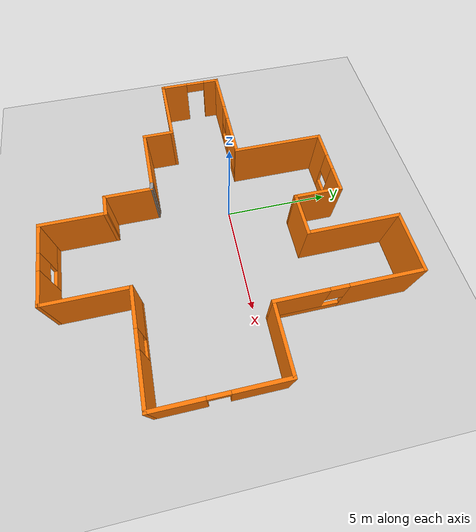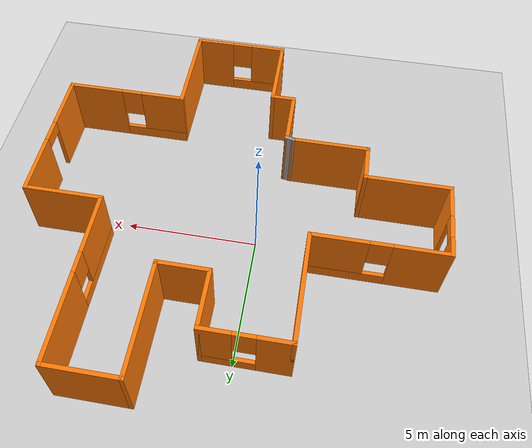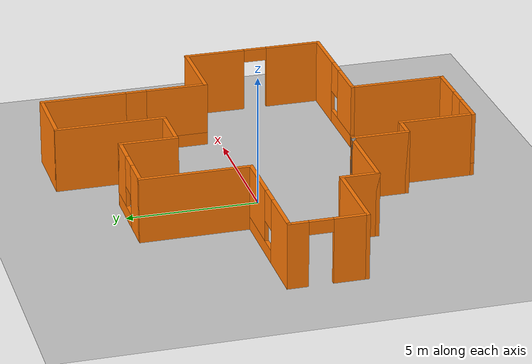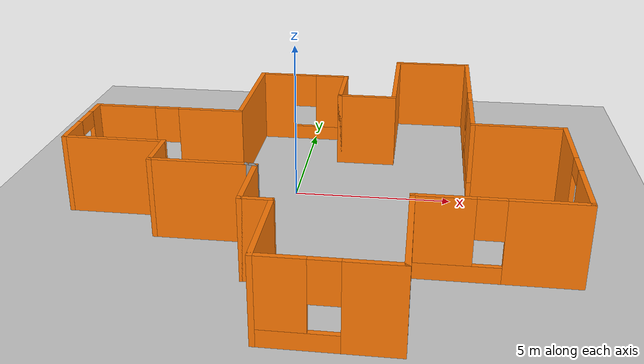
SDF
<sdf version="1.7">
 <world name="default">
  <light name="sun" type="directional">
   <cast_shadows>0</cast_shadows>
   <pose>0 0 10 0 -0 0</pose>
   <diffuse>0.8 0.8 0.8 1</diffuse>
   <specular>0.2 0.2 0.2 1</specular>
   <attenuation>
    <range>1000</range>
    <constant>0.9</constant>
    <linear>0.01</linear>
    <quadratic>0.001</quadratic>
   </attenuation>
   <direction>-0.5 0.1 -0.9</direction>
   <spot><inner_angle>0</inner_angle><outer_angle>0</outer_angle><falloff>0</falloff></spot>
  </light>
  <model name="ground_plane">
   <static>1</static>
   <link name="link">
    <collision name="collision">
     <geometry><plane><normal>0 0 1</normal><size>100 100</size></plane></geometry>
     <surface>
      <contact><collide_bitmask>65535</collide_bitmask></contact>
      <friction><ode><mu>100</mu><mu2>50</mu2></ode></friction>
     </surface>
    </collision>
    <visual name="visual">
     <cast_shadows>0</cast_shadows>
     <geometry><plane><normal>0 0 1</normal><size>100 100</size></plane></geometry>
     <material>
      <script><uri>file://media/materials/scripts/gazebo.material</uri><name>Gazebo/Grey</name></script>
     </material>
    </visual>
   </link>
  </model>
  <gravity>0 0 -9.8</gravity>
  <magnetic_field>6e-06 2.3e-05 -4.2e-05</magnetic_field>
  <atmosphere type="adiabatic"/>
  <physics type="ode">
   <max_step_size>0.001</max_step_size>
   <real_time_factor>1</real_time_factor>
   <real_time_update_rate>1000</real_time_update_rate>
  </physics>
  <scene><ambient>0.4 0.4 0.4 1</ambient><background>0.7 0.7 0.7 1</background><shadows>0</shadows></scene>
  <spherical_coordinates>
   <surface_model>EARTH_WGS84</surface_model>
   <latitude_deg>0</latitude_deg>
   <longitude_deg>0</longitude_deg>
   <elevation>0</elevation>
   <heading_deg>0</heading_deg>
  </spherical_coordinates>
  <model name="CustomEnvironment">
   <pose>0.805 -0.75 0 0 -0 0</pose>
   <link name="Wall_0">
    <collision name="Wall_0_Collision">
     <geometry><box><size>3 0.15 2.5</size></box></geometry>
     <pose>0 0 1.25 0 -0 0</pose>
    </collision>
    <visual name="Wall_0_Visual">
     <pose>0 0 1.25 0 -0 0</pose>
     <geometry><box><size>3 0.15 2.5</size></box></geometry>
     <material>
      <script><uri>file://media/materials/scripts/gazebo.material</uri><name>Gazebo/Grey</name></script>
      <ambient>0.996078 0.47451 0.0196078 1</ambient>
     </material>
     <meta><layer>0</layer></meta>
    </visual>
    <pose>-3.1 -2.65 0 0 -0 3.14159</pose>
   </link>
   <link name="Wall_1">
    <collision name="Wall_1_Collision">
     <geometry><box><size>1.5 0.15 2.5</size></box></geometry>
     <pose>0 0 1.25 0 -0 0</pose>
    </collision>
    <visual name="Wall_1_Visual">
     <pose>0 0 1.25 0 -0 0</pose>
     <geometry><box><size>1.5 0.15 2.5</size></box></geometry>
     <material>
      <script><uri>file://media/materials/scripts/gazebo.material</uri><name>Gazebo/Grey</name></script>
      <ambient>0.996078 0.47451 0.0196078 1</ambient>
     </material>
     <meta><layer>0</layer></meta>
    </visual>
    <pose>-4.525 -1.975 0 0 -0 1.5708</pose>
   </link>
   <link name="Wall_10">
    <collision name="Wall_10_Collision">
     <geometry><box><size>2.75 0.15 2.5</size></box></geometry>
     <pose>0 0 1.25 0 -0 0</pose>
    </collision>
    <visual name="Wall_10_Visual">
     <pose>0 0 1.25 0 -0 0</pose>
     <geometry><box><size>2.75 0.15 2.5</size></box></geometry>
     <material>
      <script><uri>file://media/materials/scripts/gazebo.material</uri><name>Gazebo/Grey</name></script>
      <ambient>0.996078 0.47451 0.0196078 1</ambient>
     </material>
     <meta><layer>0</layer></meta>
    </visual>
    <pose>3.475 7.65 0 0 -0 0</pose>
   </link>
   <link name="Wall_11">
    <pose>4.775 4.475 0 0 -0 -1.5708</pose>
    <visual name="Wall_11_Visual_0">
     <pose>-1.59669 0 1.25 0 -0 0</pose>
     <geometry><box><size>3.30661 0.15 2.5</size></box></geometry>
     <material>
      <script><uri>file://media/materials/scripts/gazebo.material</uri><name>Gazebo/Grey</name></script>
      <ambient>0.996078 0.47451 0.0196078 1</ambient>
     </material>
     <meta><layer>0</layer></meta>
    </visual>
    <collision name="Wall_11_Collision_0">
     <geometry><box><size>3.30661 0.15 2.5</size></box></geometry>
     <pose>-1.59669 0 1.25 0 -0 0</pose>
    </collision>
    <visual name="Wall_11_Visual_1">
     <pose>1.65331 0 0.25 0 -0 0</pose>
     <geometry><box><size>3.19339 0.15 0.5</size></box></geometry>
     <material>
      <script><uri>file://media/materials/scripts/gazebo.material</uri><name>Gazebo/Grey</name></script>
      <ambient>0.996078 0.47451 0.0196078 1</ambient>
     </material>
     <meta><layer>0</layer></meta>
    </visual>
    <collision name="Wall_11_Collision_1">
     <geometry><box><size>3.19339 0.15 0.5</size></box></geometry>
     <pose>1.65331 0 0.25 0 -0 0</pose>
    </collision>
    <visual name="Wall_11_Visual_2">
     <pose>2.05331 0 1.5 0 -0 0</pose>
     <geometry><box><size>2.39339 0.15 2</size></box></geometry>
     <material>
      <script><uri>file://media/materials/scripts/gazebo.material</uri><name>Gazebo/Grey</name></script>
      <ambient>0.996078 0.47451 0.0196078 1</ambient>
     </material>
     <meta><layer>0</layer></meta>
    </visual>
    <collision name="Wall_11_Collision_2">
     <geometry><box><size>2.39339 0.15 2</size></box></geometry>
     <pose>2.05331 0 1.5 0 -0 0</pose>
    </collision>
    <visual name="Wall_11_Visual_3">
     <pose>0.456611 0 1.9 0 -0 0</pose>
     <geometry><box><size>0.8 0.15 1.2</size></box></geometry>
     <material>
      <script><uri>file://media/materials/scripts/gazebo.material</uri><name>Gazebo/Grey</name></script>
      <ambient>0.996078 0.47451 0.0196078 1</ambient>
     </material>
     <meta><layer>0</layer></meta>
    </visual>
    <collision name="Wall_11_Collision_3">
     <geometry><box><size>0.8 0.15 1.2</size></box></geometry>
     <pose>0.456611 0 1.9 0 -0 0</pose>
    </collision>
   </link>
   <link name="Wall_12">
    <collision name="Wall_12_Collision">
     <geometry><box><size>3 0.15 2.5</size></box></geometry>
     <pose>0 0 1.25 0 -0 0</pose>
    </collision>
    <visual name="Wall_12_Visual">
     <pose>0 0 1.25 0 -0 0</pose>
     <geometry><box><size>3 0.15 2.5</size></box></geometry>
     <material>
      <script><uri>file://media/materials/scripts/gazebo.material</uri><name>Gazebo/Grey</name></script>
      <ambient>0.996078 0.47451 0.0196078 1</ambient>
     </material>
     <meta><layer>0</layer></meta>
    </visual>
    <pose>6.2 1.3 0 0 -0 0</pose>
   </link>
   <link name="Wall_13">
    <pose>7.625 -1.375 0 0 -0 -1.5708</pose>
    <visual name="Wall_13_Visual_0">
     <pose>-1.5587 0 1.25 0 -0 0</pose>
     <geometry><box><size>2.38259 0.15 2.5</size></box></geometry>
     <material>
      <script><uri>file://media/materials/scripts/gazebo.material</uri><name>Gazebo/Grey</name></script>
      <ambient>0.996078 0.47451 0.0196078 1</ambient>
     </material>
     <meta><layer>0</layer></meta>
    </visual>
    <collision name="Wall_13_Collision_0">
     <geometry><box><size>2.38259 0.15 2.5</size></box></geometry>
     <pose>-1.5587 0 1.25 0 -0 0</pose>
    </collision>
    <visual name="Wall_13_Visual_1">
     <pose>1.6413 0 1.25 0 -0 0</pose>
     <geometry><box><size>2.21741 0.15 2.5</size></box></geometry>
     <material>
      <script><uri>file://media/materials/scripts/gazebo.material</uri><name>Gazebo/Grey</name></script>
      <ambient>0.996078 0.47451 0.0196078 1</ambient>
     </material>
     <meta><layer>0</layer></meta>
    </visual>
    <collision name="Wall_13_Collision_1">
     <geometry><box><size>2.21741 0.15 2.5</size></box></geometry>
     <pose>1.6413 0 1.25 0 -0 0</pose>
    </collision>
    <visual name="Wall_13_Visual_2">
     <pose>0.082592 0 2.25 0 -0 0</pose>
     <geometry><box><size>0.9 0.15 0.5</size></box></geometry>
     <material>
      <script><uri>file://media/materials/scripts/gazebo.material</uri><name>Gazebo/Grey</name></script>
      <ambient>0.996078 0.47451 0.0196078 1</ambient>
     </material>
     <meta><layer>0</layer></meta>
    </visual>
    <collision name="Wall_13_Collision_2">
     <geometry><box><size>0.9 0.15 0.5</size></box></geometry>
     <pose>0.082592 0 2.25 0 -0 0</pose>
    </collision>
   </link>
   <link name="Wall_14">
    <pose>5.325 -4.05 0 0 -0 3.14159</pose>
    <visual name="Wall_14_Visual_0">
     <pose>-1.27016 0 1.25 0 -0 0</pose>
     <geometry><box><size>2.20968 0.15 2.5</size></box></geometry>
     <material>
      <script><uri>file://media/materials/scripts/gazebo.material</uri><name>Gazebo/Grey</name></script>
      <ambient>0.996078 0.47451 0.0196078 1</ambient>
     </material>
     <meta><layer>0</layer></meta>
    </visual>
    <collision name="Wall_14_Collision_0">
     <geometry><box><size>2.20968 0.15 2.5</size></box></geometry>
     <pose>-1.27016 0 1.25 0 -0 0</pose>
    </collision>
    <visual name="Wall_14_Visual_1">
     <pose>1.10484 0 0.25 0 -0 0</pose>
     <geometry><box><size>2.54032 0.15 0.5</size></box></geometry>
     <material>
      <script><uri>file://media/materials/scripts/gazebo.material</uri><name>Gazebo/Grey</name></script>
      <ambient>0.996078 0.47451 0.0196078 1</ambient>
     </material>
     <meta><layer>0</layer></meta>
    </visual>
    <collision name="Wall_14_Collision_1">
     <geometry><box><size>2.54032 0.15 0.5</size></box></geometry>
     <pose>1.10484 0 0.25 0 -0 0</pose>
    </collision>
    <visual name="Wall_14_Visual_2">
     <pose>1.50484 0 1.5 0 -0 0</pose>
     <geometry><box><size>1.74032 0.15 2</size></box></geometry>
     <material>
      <script><uri>file://media/materials/scripts/gazebo.material</uri><name>Gazebo/Grey</name></script>
      <ambient>0.996078 0.47451 0.0196078 1</ambient>
     </material>
     <meta><layer>0</layer></meta>
    </visual>
    <collision name="Wall_14_Collision_2">
     <geometry><box><size>1.74032 0.15 2</size></box></geometry>
     <pose>1.50484 0 1.5 0 -0 0</pose>
    </collision>
    <visual name="Wall_14_Visual_3">
     <pose>0.234678 0 1.9 0 -0 0</pose>
     <geometry><box><size>0.8 0.15 1.2</size></box></geometry>
     <material>
      <script><uri>file://media/materials/scripts/gazebo.material</uri><name>Gazebo/Grey</name></script>
      <ambient>0.996078 0.47451 0.0196078 1</ambient>
     </material>
     <meta><layer>0</layer></meta>
    </visual>
    <collision name="Wall_14_Collision_3">
     <geometry><box><size>0.8 0.15 1.2</size></box></geometry>
     <pose>0.234678 0 1.9 0 -0 0</pose>
    </collision>
   </link>
   <link name="Wall_15">
    <collision name="Wall_15_Collision">
     <geometry><box><size>3.75 0.15 2.5</size></box></geometry>
     <pose>0 0 1.25 0 -0 0</pose>
    </collision>
    <visual name="Wall_15_Visual">
     <pose>0 0 1.25 0 -0 0</pose>
     <geometry><box><size>3.75 0.15 2.5</size></box></geometry>
     <material>
      <script><uri>file://media/materials/scripts/gazebo.material</uri><name>Gazebo/Grey</name></script>
      <ambient>0.996078 0.47451 0.0196078 1</ambient>
     </material>
     <meta><layer>0</layer></meta>
    </visual>
    <pose>3.025 -5.85 0 0 -0 -1.5708</pose>
   </link>
   <link name="Wall_16">
    <pose>1.225 -7.65 0 0 -0 3.14159</pose>
    <visual name="Wall_16_Visual_0">
     <pose>-1.10127 0 1.25 0 -0 0</pose>
     <geometry><box><size>1.54746 0.15 2.5</size></box></geometry>
     <material>
      <script><uri>file://media/materials/scripts/gazebo.material</uri><name>Gazebo/Grey</name></script>
      <ambient>0.996078 0.47451 0.0196078 1</ambient>
     </material>
     <meta><layer>0</layer></meta>
    </visual>
    <collision name="Wall_16_Collision_0">
     <geometry><box><size>1.54746 0.15 2.5</size></box></geometry>
     <pose>-1.10127 0 1.25 0 -0 0</pose>
    </collision>
    <visual name="Wall_16_Visual_1">
     <pose>0.773731 0 0.25 0 -0 0</pose>
     <geometry><box><size>2.20254 0.15 0.5</size></box></geometry>
     <material>
      <script><uri>file://media/materials/scripts/gazebo.material</uri><name>Gazebo/Grey</name></script>
      <ambient>0.996078 0.47451 0.0196078 1</ambient>
     </material>
     <meta><layer>0</layer></meta>
    </visual>
    <collision name="Wall_16_Collision_1">
     <geometry><box><size>2.20254 0.15 0.5</size></box></geometry>
     <pose>0.773731 0 0.25 0 -0 0</pose>
    </collision>
    <visual name="Wall_16_Visual_2">
     <pose>1.17373 0 1.5 0 -0 0</pose>
     <geometry><box><size>1.40254 0.15 2</size></box></geometry>
     <material>
      <script><uri>file://media/materials/scripts/gazebo.material</uri><name>Gazebo/Grey</name></script>
      <ambient>0.996078 0.47451 0.0196078 1</ambient>
     </material>
     <meta><layer>0</layer></meta>
    </visual>
    <collision name="Wall_16_Collision_2">
     <geometry><box><size>1.40254 0.15 2</size></box></geometry>
     <pose>1.17373 0 1.5 0 -0 0</pose>
    </collision>
    <visual name="Wall_16_Visual_3">
     <pose>0.072462 0 1.9 0 -0 0</pose>
     <geometry><box><size>0.8 0.15 1.2</size></box></geometry>
     <material>
      <script><uri>file://media/materials/scripts/gazebo.material</uri><name>Gazebo/Grey</name></script>
      <ambient>0.996078 0.47451 0.0196078 1</ambient>
     </material>
     <meta><layer>0</layer></meta>
    </visual>
    <collision name="Wall_16_Collision_3">
     <geometry><box><size>0.8 0.15 1.2</size></box></geometry>
     <pose>0.072462 0 1.9 0 -0 0</pose>
    </collision>
   </link>
   <link name="Wall_17">
    <collision name="Wall_17_Collision">
     <geometry><box><size>3 0.15 2.5</size></box></geometry>
     <pose>0 0 1.25 0 -0 0</pose>
    </collision>
    <visual name="Wall_17_Visual">
     <pose>0 0 1.25 0 -0 0</pose>
     <geometry><box><size>3 0.15 2.5</size></box></geometry>
     <material>
      <script><uri>file://media/materials/scripts/gazebo.material</uri><name>Gazebo/Grey</name></script>
      <ambient>0.996078 0.47451 0.0196078 1</ambient>
     </material>
     <meta><layer>0</layer></meta>
    </visual>
    <pose>-0.575 -6.225 0 0 -0 1.5708</pose>
   </link>
   <link name="Wall_18">
    <collision name="Wall_18_Collision">
     <geometry><box><size>1 0.15 2.5</size></box></geometry>
     <pose>0 0 1.25 0 -0 0</pose>
    </collision>
    <visual name="Wall_18_Visual">
     <pose>0 0 1.25 0 -0 0</pose>
     <geometry><box><size>1 0.15 2.5</size></box></geometry>
     <material>
      <script><uri>file://media/materials/scripts/gazebo.material</uri><name>Gazebo/Grey</name></script>
      <ambient>0.996078 0.47451 0.0196078 1</ambient>
     </material>
     <meta><layer>0</layer></meta>
    </visual>
    <pose>-1 -4.8 0 0 -0 3.14159</pose>
   </link>
   <link name="Wall_19">
    <collision name="Wall_19_Collision">
     <geometry><box><size>2.25 0.15 2.5</size></box></geometry>
     <pose>0 0 1.25 0 -0 0</pose>
    </collision>
    <visual name="Wall_19_Visual">
     <pose>0 0 1.25 0 -0 0</pose>
     <geometry><box><size>2.25 0.15 2.5</size></box></geometry>
     <material>
      <script><uri>file://media/materials/scripts/gazebo.material</uri><name>Gazebo/Grey</name></script>
      <ambient>0.996078 0.47451 0.0196078 1</ambient>
     </material>
     <meta><layer>0</layer></meta>
    </visual>
    <pose>-1.425 -3.75 0 0 -0 1.5708</pose>
   </link>
   <link name="Wall_2">
    <collision name="Wall_2_Collision">
     <geometry><box><size>3.25 0.15 2.5</size></box></geometry>
     <pose>0 0 1.25 0 -0 0</pose>
    </collision>
    <visual name="Wall_2_Visual">
     <pose>0 0 1.25 0 -0 0</pose>
     <geometry><box><size>3.25 0.15 2.5</size></box></geometry>
     <material>
      <script><uri>file://media/materials/scripts/gazebo.material</uri><name>Gazebo/Grey</name></script>
      <ambient>0.996078 0.47451 0.0196078 1</ambient>
     </material>
     <meta><layer>0</layer></meta>
    </visual>
    <pose>-6.075 -1.3 0 0 -0 3.14159</pose>
   </link>
   <link name="Wall_20">
    <collision name="Wall_20_Collision">
     <geometry><box><size>0.404951 0.15 2.5</size></box></geometry>
     <pose>0 0 1.25 0 -0 0</pose>
    </collision>
    <visual name="Wall_20_Visual">
     <pose>0 0 1.25 0 -0 0</pose>
     <geometry><box><size>0.404951 0.15 2.5</size></box></geometry>
     <material>
      <script><uri>file://media/materials/scripts/gazebo.material</uri><name>Gazebo/Grey</name></script>
      <ambient>1 1 1 1</ambient>
     </material>
     <meta><layer>0</layer></meta>
    </visual>
    <pose>-1.55 -2.675 0 0 -0 2.9442</pose>
   </link>
   <link name="Wall_3">
    <pose>-7.625 0.125 0 0 -0 1.5708</pose>
    <visual name="Wall_3_Visual_0">
     <pose>-0.843378 0 1.25 0 -0 0</pose>
     <geometry><box><size>1.31324 0.15 2.5</size></box></geometry>
     <material>
      <script><uri>file://media/materials/scripts/gazebo.material</uri><name>Gazebo/Grey</name></script>
      <ambient>0.996078 0.47451 0.0196078 1</ambient>
     </material>
     <meta><layer>0</layer></meta>
    </visual>
    <collision name="Wall_3_Collision_0">
     <geometry><box><size>1.31324 0.15 2.5</size></box></geometry>
     <pose>-0.843378 0 1.25 0 -0 0</pose>
    </collision>
    <visual name="Wall_3_Visual_1">
     <pose>1.10662 0 1.25 0 -0 0</pose>
     <geometry><box><size>0.786756 0.15 2.5</size></box></geometry>
     <material>
      <script><uri>file://media/materials/scripts/gazebo.material</uri><name>Gazebo/Grey</name></script>
      <ambient>0.996078 0.47451 0.0196078 1</ambient>
     </material>
     <meta><layer>0</layer></meta>
    </visual>
    <collision name="Wall_3_Collision_1">
     <geometry><box><size>0.786756 0.15 2.5</size></box></geometry>
     <pose>1.10662 0 1.25 0 -0 0</pose>
    </collision>
    <visual name="Wall_3_Visual_2">
     <pose>0.263244 0 2.25 0 -0 0</pose>
     <geometry><box><size>0.9 0.15 0.5</size></box></geometry>
     <material>
      <script><uri>file://media/materials/scripts/gazebo.material</uri><name>Gazebo/Grey</name></script>
      <ambient>0.996078 0.47451 0.0196078 1</ambient>
     </material>
     <meta><layer>0</layer></meta>
    </visual>
    <collision name="Wall_3_Collision_2">
     <geometry><box><size>0.9 0.15 0.5</size></box></geometry>
     <pose>0.263244 0 2.25 0 -0 0</pose>
    </collision>
   </link>
   <link name="Wall_4">
    <pose>-5.2 1.55 0 0 -0 0</pose>
    <visual name="Wall_4_Visual_0">
     <pose>-1.47318 0 1.25 0 -0 0</pose>
     <geometry><box><size>2.05364 0.15 2.5</size></box></geometry>
     <material>
      <script><uri>file://media/materials/scripts/gazebo.material</uri><name>Gazebo/Grey</name></script>
      <ambient>0.996078 0.47451 0.0196078 1</ambient>
     </material>
     <meta><layer>0</layer></meta>
    </visual>
    <collision name="Wall_4_Collision_0">
     <geometry><box><size>2.05364 0.15 2.5</size></box></geometry>
     <pose>-1.47318 0 1.25 0 -0 0</pose>
    </collision>
    <visual name="Wall_4_Visual_1">
     <pose>1.02682 0 0.25 0 -0 0</pose>
     <geometry><box><size>2.94636 0.15 0.5</size></box></geometry>
     <material>
      <script><uri>file://media/materials/scripts/gazebo.material</uri><name>Gazebo/Grey</name></script>
      <ambient>0.996078 0.47451 0.0196078 1</ambient>
     </material>
     <meta><layer>0</layer></meta>
    </visual>
    <collision name="Wall_4_Collision_1">
     <geometry><box><size>2.94636 0.15 0.5</size></box></geometry>
     <pose>1.02682 0 0.25 0 -0 0</pose>
    </collision>
    <visual name="Wall_4_Visual_2">
     <pose>1.42682 0 1.5 0 -0 0</pose>
     <geometry><box><size>2.14636 0.15 2</size></box></geometry>
     <material>
      <script><uri>file://media/materials/scripts/gazebo.material</uri><name>Gazebo/Grey</name></script>
      <ambient>0.996078 0.47451 0.0196078 1</ambient>
     </material>
     <meta><layer>0</layer></meta>
    </visual>
    <collision name="Wall_4_Collision_2">
     <geometry><box><size>2.14636 0.15 2</size></box></geometry>
     <pose>1.42682 0 1.5 0 -0 0</pose>
    </collision>
    <visual name="Wall_4_Visual_3">
     <pose>-0.046361 0 1.9 0 -0 0</pose>
     <geometry><box><size>0.8 0.15 1.2</size></box></geometry>
     <material>
      <script><uri>file://media/materials/scripts/gazebo.material</uri><name>Gazebo/Grey</name></script>
      <ambient>0.996078 0.47451 0.0196078 1</ambient>
     </material>
     <meta><layer>0</layer></meta>
    </visual>
    <collision name="Wall_4_Collision_3">
     <geometry><box><size>0.8 0.15 1.2</size></box></geometry>
     <pose>-0.046361 0 1.9 0 -0 0</pose>
    </collision>
   </link>
   <link name="Wall_5">
    <collision name="Wall_5_Collision">
     <geometry><box><size>4.25 0.15 2.5</size></box></geometry>
     <pose>0 0 1.25 0 -0 0</pose>
    </collision>
    <visual name="Wall_5_Visual">
     <pose>0 0 1.25 0 -0 0</pose>
     <geometry><box><size>4.25 0.15 2.5</size></box></geometry>
     <material>
      <script><uri>file://media/materials/scripts/gazebo.material</uri><name>Gazebo/Grey</name></script>
      <ambient>0.996078 0.47451 0.0196078 1</ambient>
     </material>
     <meta><layer>0</layer></meta>
    </visual>
    <pose>-2.775 3.6 0 0 -0 1.5708</pose>
   </link>
   <link name="Wall_6">
    <pose>-1.225 5.65 0 0 -0 0</pose>
    <visual name="Wall_6_Visual_0">
     <pose>-0.992761 0 1.25 0 -0 0</pose>
     <geometry><box><size>1.26448 0.15 2.5</size></box></geometry>
     <material>
      <script><uri>file://media/materials/scripts/gazebo.material</uri><name>Gazebo/Grey</name></script>
      <ambient>0.996078 0.47451 0.0196078 1</ambient>
     </material>
     <meta><layer>0</layer></meta>
    </visual>
    <collision name="Wall_6_Collision_0">
     <geometry><box><size>1.26448 0.15 2.5</size></box></geometry>
     <pose>-0.992761 0 1.25 0 -0 0</pose>
    </collision>
    <visual name="Wall_6_Visual_1">
     <pose>0.632239 0 0.25 0 -0 0</pose>
     <geometry><box><size>1.98552 0.15 0.5</size></box></geometry>
     <material>
      <script><uri>file://media/materials/scripts/gazebo.material</uri><name>Gazebo/Grey</name></script>
      <ambient>0.996078 0.47451 0.0196078 1</ambient>
     </material>
     <meta><layer>0</layer></meta>
    </visual>
    <collision name="Wall_6_Collision_1">
     <geometry><box><size>1.98552 0.15 0.5</size></box></geometry>
     <pose>0.632239 0 0.25 0 -0 0</pose>
    </collision>
    <visual name="Wall_6_Visual_2">
     <pose>1.03224 0 1.5 0 -0 0</pose>
     <geometry><box><size>1.18552 0.15 2</size></box></geometry>
     <material>
      <script><uri>file://media/materials/scripts/gazebo.material</uri><name>Gazebo/Grey</name></script>
      <ambient>0.996078 0.47451 0.0196078 1</ambient>
     </material>
     <meta><layer>0</layer></meta>
    </visual>
    <collision name="Wall_6_Collision_2">
     <geometry><box><size>1.18552 0.15 2</size></box></geometry>
     <pose>1.03224 0 1.5 0 -0 0</pose>
    </collision>
    <visual name="Wall_6_Visual_3">
     <pose>0.039479 0 1.9 0 -0 0</pose>
     <geometry><box><size>0.8 0.15 1.2</size></box></geometry>
     <material>
      <script><uri>file://media/materials/scripts/gazebo.material</uri><name>Gazebo/Grey</name></script>
      <ambient>0.996078 0.47451 0.0196078 1</ambient>
     </material>
     <meta><layer>0</layer></meta>
    </visual>
    <collision name="Wall_6_Collision_3">
     <geometry><box><size>0.8 0.15 1.2</size></box></geometry>
     <pose>0.039479 0 1.9 0 -0 0</pose>
    </collision>
   </link>
   <link name="Wall_7">
    <collision name="Wall_7_Collision">
     <geometry><box><size>2.25 0.15 2.5</size></box></geometry>
     <pose>0 0 1.25 0 -0 0</pose>
    </collision>
    <visual name="Wall_7_Visual">
     <pose>0 0 1.25 0 -0 0</pose>
     <geometry><box><size>2.25 0.15 2.5</size></box></geometry>
     <material>
      <script><uri>file://media/materials/scripts/gazebo.material</uri><name>Gazebo/Grey</name></script>
      <ambient>0.996078 0.47451 0.0196078 1</ambient>
     </material>
     <meta><layer>0</layer></meta>
    </visual>
    <pose>0.325 4.6 0 0 -0 -1.5708</pose>
   </link>
   <link name="Wall_8">
    <collision name="Wall_8_Collision">
     <geometry><box><size>2 0.15 2.5</size></box></geometry>
     <pose>0 0 1.25 0 -0 0</pose>
    </collision>
    <visual name="Wall_8_Visual">
     <pose>0 0 1.25 0 -0 0</pose>
     <geometry><box><size>2 0.15 2.5</size></box></geometry>
     <material>
      <script><uri>file://media/materials/scripts/gazebo.material</uri><name>Gazebo/Grey</name></script>
      <ambient>0.996078 0.47451 0.0196078 1</ambient>
     </material>
     <meta><layer>0</layer></meta>
    </visual>
    <pose>1.25 3.55 0 0 -0 0</pose>
   </link>
   <link name="Wall_9">
    <collision name="Wall_9_Collision">
     <geometry><box><size>4.25 0.15 2.5</size></box></geometry>
     <pose>0 0 1.25 0 -0 0</pose>
    </collision>
    <visual name="Wall_9_Visual">
     <pose>0 0 1.25 0 -0 0</pose>
     <geometry><box><size>4.25 0.15 2.5</size></box></geometry>
     <material>
      <script><uri>file://media/materials/scripts/gazebo.material</uri><name>Gazebo/Grey</name></script>
      <ambient>0.996078 0.47451 0.0196078 1</ambient>
     </material>
     <meta><layer>0</layer></meta>
    </visual>
    <pose>2.175 5.6 0 0 -0 1.5708</pose>
   </link>
   <static>1</static>
  </model>
 </world>
</sdf>
